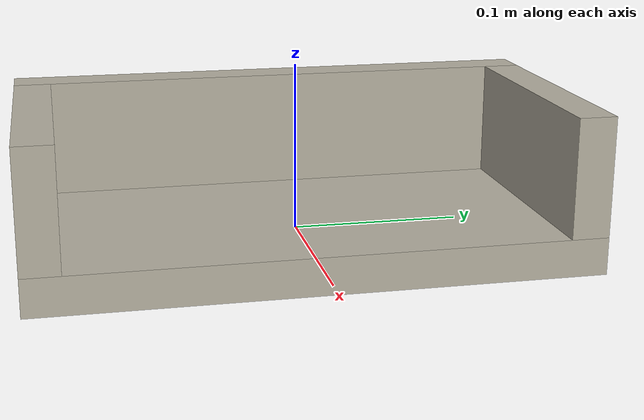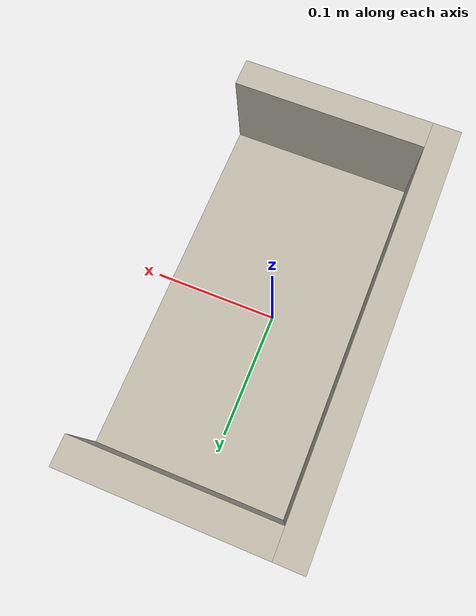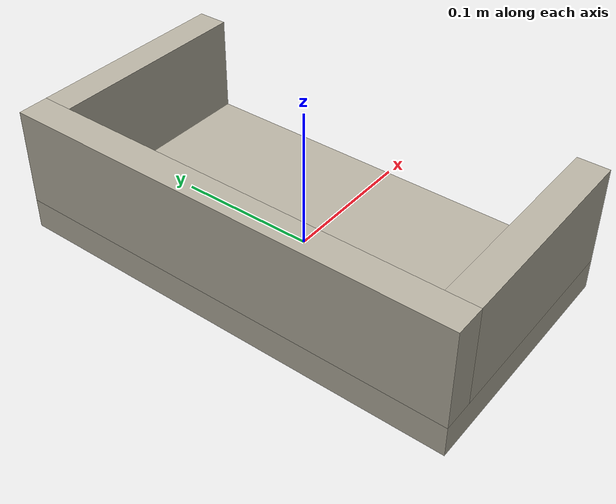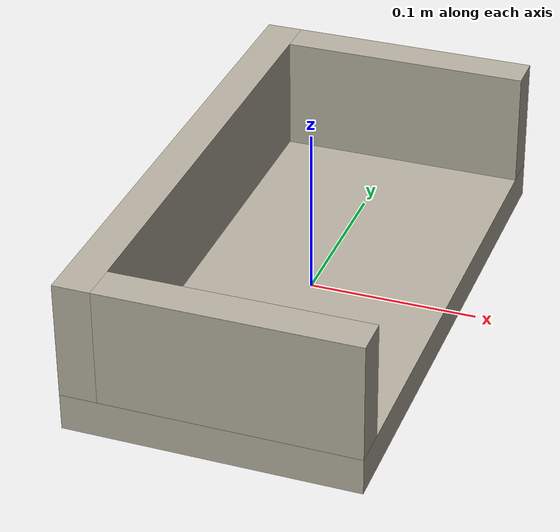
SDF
<?xml version ="1.0"?>
<sdf version="1.6">
    <model name="shared_planter">
        <static>false</static>
        <link name="shared_planter_base">
            <collision name="shared_planter_base_collision">
                <geometry>
                <box>
                    <size>0.172 0.325 0.022</size>
                </box>
                </geometry>
            </collision>
            <inertial>
                <inertia>
                <ixx>0.000703</ixx>
                <ixy>0</ixy>
                <ixz>0</ixz>
                <iyy>0.000703</iyy>
                <iyz>0</iyz>
                <izz>0.000703</izz>
                </inertia>
                <mass>0.1</mass>
            </inertial>
            <visual name="shared_planter_base_visual">
                <pose>0 0 0 0 0 0</pose>
                <geometry>
                    <box>
                        <size>0.172 0.325 0.022</size>
                    </box>
                </geometry>
                <material>
                    <ambient>0.71 0.69 0.63 1.0</ambient>
                    <diffuse>0.71 0.69 0.63 1.0</diffuse>
                    <specular>0.1 0.1 0.1 1</specular>
                    <emissive>0 0 0 0</emissive>
                </material>
            </visual>
        </link>
        <link name="shared_planter_wall_back">
            <pose>-0.075 0 0.046 0 0 0</pose>
            <collision name="shared_planter_wall_back_collision">
                <geometry>
                <box>
                    <size>0.022 0.325 0.07</size>
                </box>
                </geometry>
            </collision>
            <inertial>
                <inertia>
                <ixx>0.000703</ixx>
                <ixy>0</ixy>
                <ixz>0</ixz>
                <iyy>0.000703</iyy>
                <iyz>0</iyz>
                <izz>0.000703</izz>
                </inertia>
                <mass>0.1</mass>
            </inertial>
            <visual name="shared_planter_wall_back_visual">
                <geometry>
                    <box>
                        <size>0.022 0.325 0.07</size>
                    </box>
                </geometry>
                <material>
                    <ambient>0.71 0.69 0.63 1.0</ambient>
                    <diffuse>0.71 0.69 0.63 1.0</diffuse>
                    <specular>0.1 0.1 0.1 1</specular>
                    <emissive>0 0 0 0</emissive>
                </material>
            </visual>
        </link>
        <link name="shared_planter_wall_left">
            <pose>0.011 -0.1515 0.046 0 0 0</pose>
            <collision name="shared_planter_wall_left_collision">
                <geometry>
                <box>
                    <size>0.15 0.022 0.07</size>
                </box>
                </geometry>
            </collision>
            <inertial>
                <inertia>
                <ixx>0.000703</ixx>
                <ixy>0</ixy>
                <ixz>0</ixz>
                <iyy>0.000703</iyy>
                <iyz>0</iyz>
                <izz>0.000703</izz>
                </inertia>
                <mass>0.1</mass>
            </inertial>
            <visual name="shared_planter_wall_left_visual">
                <geometry>
                    <box>
                        <size>0.15 0.022 0.07</size>
                    </box>
                </geometry>
                <material>
                    <ambient>0.71 0.69 0.63 1.0</ambient>
                    <diffuse>0.71 0.69 0.63 1.0</diffuse>
                    <specular>0.1 0.1 0.1 1</specular>
                    <emissive>0 0 0 0</emissive>
                </material>
            </visual>
        </link>
        <link name="shared_planter_wall_right">
            <pose>0.011 0.1515 0.046 0 0 0</pose>
            <collision name="shared_planter_wall_right_collision">
                <geometry>
                <box>
                    <size>0.15 0.022 0.07</size>
                </box>
                </geometry>
            </collision>
            <inertial>
                <inertia>
                <ixx>0.000703</ixx>
                <ixy>0</ixy>
                <ixz>0</ixz>
                <iyy>0.000703</iyy>
                <iyz>0</iyz>
                <izz>0.000703</izz>
                </inertia>
                <mass>0.1</mass>
            </inertial>
            <visual name="shared_planter_wall_right_visual">
                <geometry>
                    <box>
                        <size>0.15 0.022 0.07</size>
                    </box>
                </geometry>
                <material>
                    <ambient>0.71 0.69 0.63 1.0</ambient>
                    <diffuse>0.71 0.69 0.63 1.0</diffuse>
                    <specular>0.1 0.1 0.1 1</specular>
                    <emissive>0 0 0 0</emissive>
                </material>
            </visual>
        </link>
        <joint name="back_wall_fixed" type="fixed">
            <parent>shared_planter_base</parent>
            <child>shared_planter_wall_back</child>
        </joint>
        <joint name="left_wall_fixed" type="fixed">
            <parent>shared_planter_base</parent>
            <child>shared_planter_wall_left</child>
        </joint>
        <joint name="right_wall_fixed" type="fixed">
            <parent>shared_planter_base</parent>
            <child>shared_planter_wall_right</child>
        </joint>
    </model>
</sdf>
